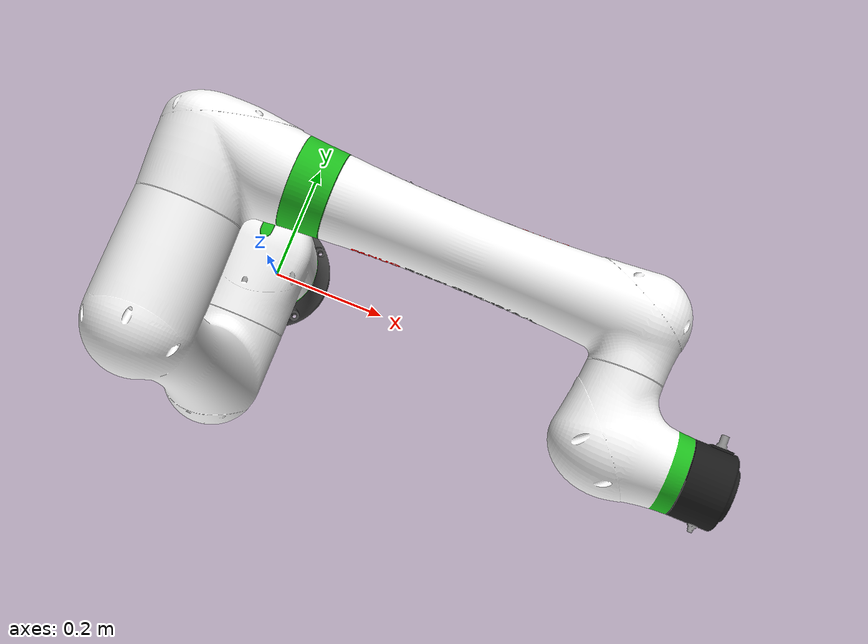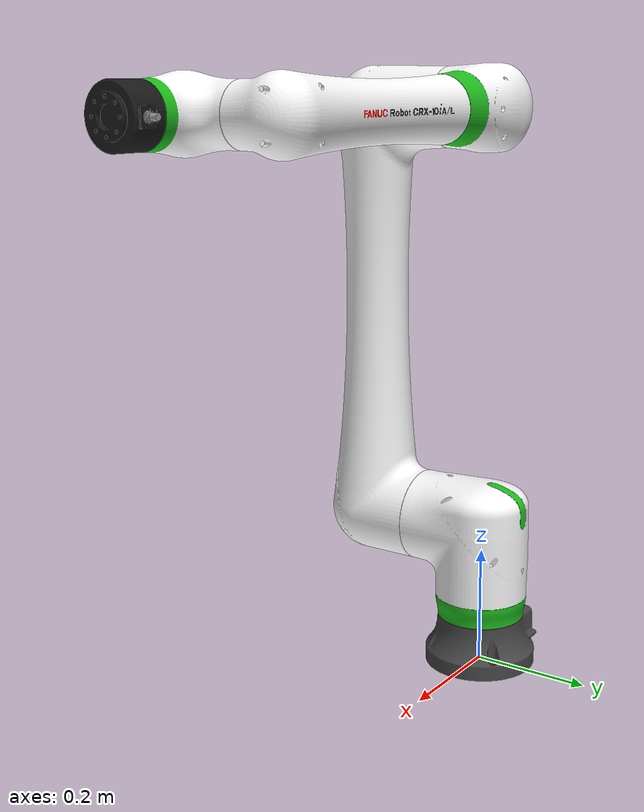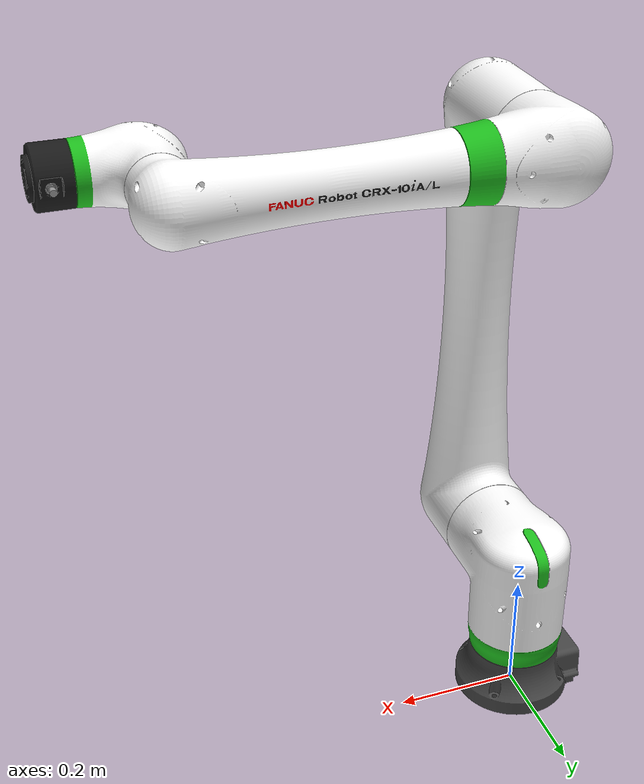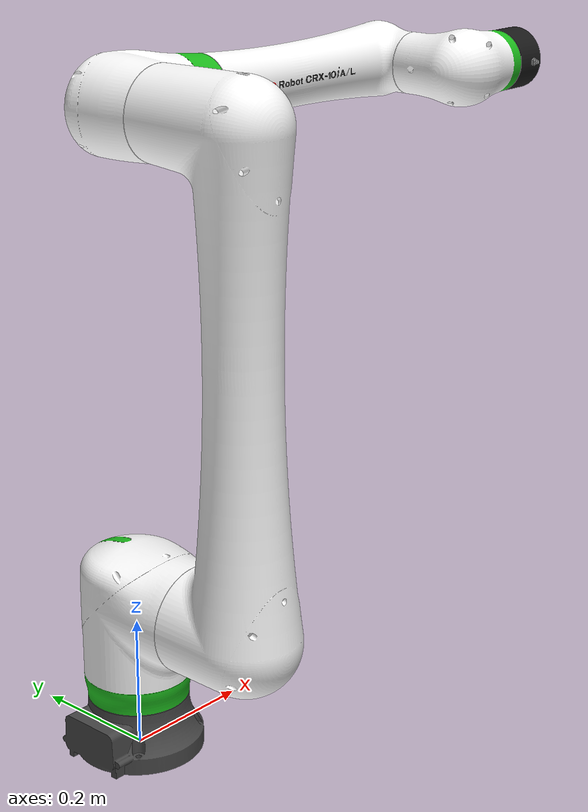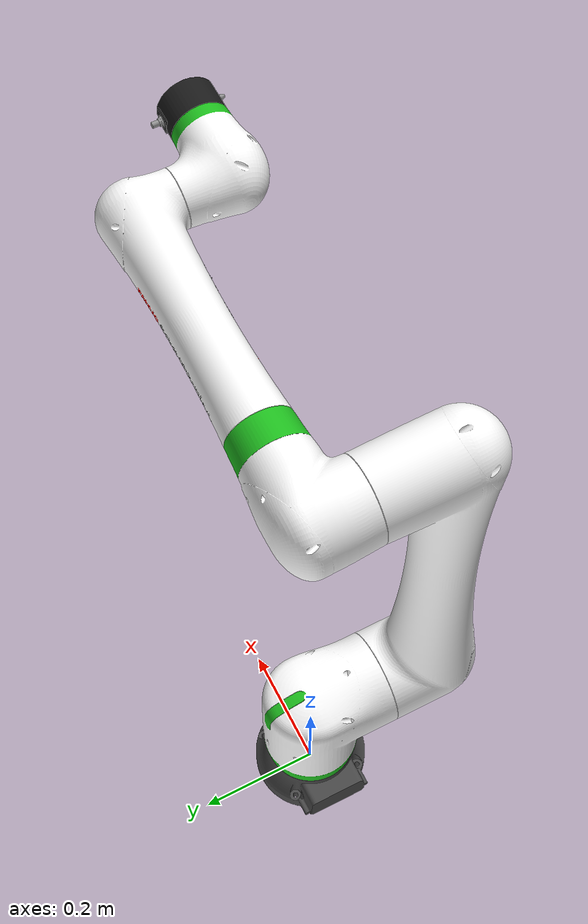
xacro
<?xml version="1.0" ?>
<robot name="crx10ia_l" xmlns:xacro="http://wiki.ros.org/xacro">
  <xacro:include
    filename="$(find fanuc_crx_description)/urdf/crx10ia_l_urdf_macro.xacro"
  />

  <link name="world" />
  <link name="ee_link" />
  <xacro:crx10ia_l parent="world" child="ee_link">
    <origin xyz="0 0 0" rpy="0 0 0" />
  </xacro:crx10ia_l>
</robot>

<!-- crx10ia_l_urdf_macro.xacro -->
<!--
SPDX-FileCopyrightText: 2025-2026, FANUC America Corporation
SPDX-FileCopyrightText: 2025-2026, FANUC CORPORATION
SPDX-License-Identifier: Apache-2.0
-->
<robot xmlns:xacro="http://wiki.ros.org/xacro">
  <xacro:macro
    name="crx10ia_l"
    params="prefix=''
            parent
            *origin
            child"
  >
    <xacro:property name="l_base" value="0.245" />
    <xacro:property name="l_1" value="0.0" />
    <xacro:property name="l_2" value="0.710" />
    <xacro:property name="l_3" value="0.0" />
    <xacro:property name="l_4" value="0.540" />
    <xacro:property name="l_5" value="0.150" />
    <xacro:property name="l_6" value="0.160" />

    <xacro:property name="mz_1" value="0.1277" />
    <xacro:property name="mz_2" value="0.245" />
    <xacro:property name="mz_3" value="0.955" />
    <xacro:property name="mx_1" value="0.540" />
    <xacro:property name="mx_2" value="0.700" />
    <xacro:property name="my_1" value="-0.150" />

    <xacro:property name="j1_lower_limit" value="${radians(-179.9)}" />
    <xacro:property name="j2_lower_limit" value="${radians(-179.9)}" />
    <xacro:property name="j3_lower_limit" value="${radians(-270)}" />
    <xacro:property name="j4_lower_limit" value="${radians(-190)}" />
    <xacro:property name="j5_lower_limit" value="${radians(-179.9)}" />
    <xacro:property name="j6_lower_limit" value="${radians(-225)}" />

    <xacro:property name="j1_upper_limit" value="${radians(179.9)}" />
    <xacro:property name="j2_upper_limit" value="${radians(179.9)}" />
    <xacro:property name="j3_upper_limit" value="${radians(270)}" />
    <xacro:property name="j4_upper_limit" value="${radians(190)}" />
    <xacro:property name="j5_upper_limit" value="${radians(179.9)}" />
    <xacro:property name="j6_upper_limit" value="${radians(225)}" />

    <xacro:property name="j1_effort_limit" value="400" />
    <xacro:property name="j2_effort_limit" value="400" />
    <xacro:property name="j3_effort_limit" value="200" />
    <xacro:property name="j4_effort_limit" value="60" />
    <xacro:property name="j5_effort_limit" value="60" />
    <xacro:property name="j6_effort_limit" value="60" />

    <xacro:property name="j1_velocity_limit" value="${radians(120)}" />
    <xacro:property name="j2_velocity_limit" value="${radians(120)}" />
    <xacro:property name="j3_velocity_limit" value="${radians(180)}" />
    <xacro:property name="j4_velocity_limit" value="${radians(180)}" />
    <xacro:property name="j5_velocity_limit" value="${radians(180)}" />
    <xacro:property name="j6_velocity_limit" value="${radians(180)}" />

    <!-- links -->
    <link name="${prefix}base_link">
      <visual>
        <origin xyz="0 0 0" rpy="0 0 0" />
        <geometry>
          <mesh
            filename="package://fanuc_crx_description/meshes/crx10ia_l/visual/base.dae"
          />
        </geometry>
      </visual>
      <collision>
        <origin xyz="0 0 0" rpy="0 0 0" />
        <geometry>
          <mesh
            filename="package://fanuc_crx_description/meshes/crx10ia_l/collision/base.stl"
            scale="0.001 0.001 0.001"
          />
        </geometry>
      </collision>
      <inertial>
        <mass value="4.517" />
        <origin xyz="-0.01099 0.00068 0.06387" />
        <inertia
          ixx="0.012030117"
          ixy="-0.000225344"
          ixz="0.001122373"
          iyy="0.016142165"
          iyz="-0.000086473"
          izz="0.019880412"
        />
      </inertial>
    </link>

    <link name="${prefix}J1_link">
      <visual>
        <origin xyz="0 0 ${-l_base}" rpy="0 0 0" />
        <geometry>
          <mesh
            filename="package://fanuc_crx_description/meshes/crx10ia_l/visual/j1.dae"
          />
        </geometry>
      </visual>
      <collision>
        <origin xyz="0 0 ${mz_1 - l_base}" rpy="0 0 0" />
        <geometry>
          <mesh
            filename="package://fanuc_crx_description/meshes/crx10ia_l/collision/j1.stl"
            scale="0.001 0.001 0.001"
          />
        </geometry>
      </collision>
      <inertial>
        <mass value="10.673" />
        <origin xyz="-0.00058 -0.04577 -0.03713" />
        <inertia
          ixx="0.107483279"
          ixy="-0.003187604"
          ixz="0.001474912"
          iyy="0.066223333"
          iyz="-0.019080999"
          izz="0.07617368"
        />
      </inertial>
    </link>

    <link name="${prefix}J2_link">
      <visual>
        <origin xyz="-${l_1} 0 ${-l_base}" rpy="0 0 0" />
        <geometry>
          <mesh
            filename="package://fanuc_crx_description/meshes/crx10ia_l/visual/j2.dae"
          />
        </geometry>
      </visual>
      <collision>
        <origin xyz="-${l_1} 0 ${mz_2 - l_base}" rpy="0 0 0" />
        <geometry>
          <mesh
            filename="package://fanuc_crx_description/meshes/crx10ia_l/collision/j2.stl"
            scale="0.001 0.001 0.001"
          />
        </geometry>
      </collision>
      <inertial>
        <mass value="11.472" />
        <origin xyz="-0.00005 -0.18506 0.33295" />
        <inertia
          ixx="1.254548468"
          ixy="-0.000000339"
          ixz="-0.000116455"
          iyy="1.22471305"
          iyz="0.072788114"
          izz="0.062673661"
        />
      </inertial>
    </link>

    <link name="${prefix}J3_link">
      <visual>
        <origin xyz="-${l_1} 0 ${-l_base - l_2}" rpy="0 0 0" />
        <geometry>
          <mesh
            filename="package://fanuc_crx_description/meshes/crx10ia_l/visual/j3.dae"
          />
        </geometry>
      </visual>
      <collision>
        <origin xyz="-${l_1} 0 ${mz_3 - l_base - l_2}" rpy="0 0 0" />
        <geometry>
          <mesh
            filename="package://fanuc_crx_description/meshes/crx10ia_l/collision/j3.stl"
            scale="0.001 0.001 0.001"
          />
        </geometry>
      </collision>
      <inertial>
        <mass value="4.162" />
        <origin xyz="0.0352 -0.01088 0.00006" />
        <inertia
          ixx="0.007588888"
          ixy="0.001725574"
          ixz="-0.000011685"
          iyy="0.019835773"
          iyz="0.000026918"
          izz="0.018316462"
        />
      </inertial>
    </link>

    <link name="${prefix}J4_link">
      <visual>
        <origin xyz="${-l_1} 0 ${-l_base - l_2 - l_3}" rpy="0 0 0" />
        <geometry>
          <mesh
            filename="package://fanuc_crx_description/meshes/crx10ia_l/visual/j4.dae"
          />
        </geometry>
      </visual>
      <collision>
        <origin
          xyz="${mx_1 - l_1} 0 ${mz_3 - l_base - l_2 - l_3}"
          rpy="0 0 0"
        />
        <geometry>
          <mesh
            filename="package://fanuc_crx_description/meshes/crx10ia_l/collision/j4.stl"
            scale="0.001 0.001 0.001"
          />
        </geometry>
      </collision>
      <inertial>
        <mass value="3.969" />
        <origin xyz="0.3726 -0.00262 -0.00013" />
        <inertia
          ixx="0.004604385"
          ixy="-0.003895767"
          ixz="0.000048747"
          iyy="0.080457951"
          iyz="0.000002764"
          izz="0.08116905"
        />
      </inertial>
    </link>

    <link name="${prefix}J5_link">
      <visual>
        <origin xyz="${-l_1 - l_4} 0.0 ${-l_base - l_2 - l_3}" rpy="0 0 0" />
        <geometry>
          <mesh
            filename="package://fanuc_crx_description/meshes/crx10ia_l/visual/j5.dae"
          />
        </geometry>
      </visual>
      <collision>
        <origin
          xyz="${mx_1 -l_1 - l_4} ${my_1} ${mz_3 - l_base - l_2 - l_3}"
          rpy="0 0 0"
        />
        <geometry>
          <mesh
            filename="package://fanuc_crx_description/meshes/crx10ia_l/collision/j5.stl"
            scale="0.001 0.001 0.001"
          />
        </geometry>
      </collision>
      <inertial>
        <mass value="2.509" />
        <origin xyz="0.0225 -0.11714 0.0013" />
        <inertia
          ixx="0.006138756"
          ixy="-0.001800644"
          ixz="-0.000021155"
          iyy="0.004453218"
          iyz="-0.000288577"
          izz="0.00771992"
        />
      </inertial>
    </link>

    <link name="${prefix}J6_link">
      <visual>
        <origin xyz="${-l_1 - l_4} ${l_5} ${-l_base - l_2 - l_3}" rpy="0 0 0" />
        <geometry>
          <mesh
            filename="package://fanuc_crx_description/meshes/crx10ia_l/visual/j6.dae"
          />
        </geometry>
      </visual>
      <collision>
        <origin
          xyz="${mx_2 -l_1 - l_4} ${my_1 + l_5} ${mz_3 - l_base - l_2 - l_3}"
          rpy="0 0 0"
        />
        <geometry>
          <mesh
            filename="package://fanuc_crx_description/meshes/crx10ia_l/collision/j6.stl"
            scale="0.001 0.001 0.001"
          />
        </geometry>
      </collision>
      <inertial>
        <mass value="1.305" />
        <origin xyz="0.11455 0.00041 0.0001" />
        <inertia
          ixx="0.001477627"
          ixy="0.000009863"
          ixz="0.000000933"
          iyy="0.001399425"
          iyz="0.000000404"
          izz="0.001451937"
        />
      </inertial>
    </link>

    <!-- joints -->
    <joint name="${prefix}J1" type="revolute">
      <origin xyz="0 0 ${l_base}" rpy="0 0 0" />
      <parent link="${prefix}base_link" />
      <child link="${prefix}J1_link" />
      <axis xyz="0 0 1" />
      <limit
        lower="${j1_lower_limit}"
        upper="${j1_upper_limit}"
        effort="${j1_effort_limit}"
        velocity="${j1_velocity_limit}"
      />
    </joint>

    <joint name="${prefix}J2" type="revolute">
      <origin xyz="${l_1} 0 0" rpy="0 0 0" />
      <parent link="${prefix}J1_link" />
      <child link="${prefix}J2_link" />
      <axis xyz="0 1 0" />
      <limit
        lower="${j2_lower_limit}"
        upper="${j2_upper_limit}"
        effort="${j2_effort_limit}"
        velocity="${j2_velocity_limit}"
      />
    </joint>

    <joint name="${prefix}J3" type="revolute">
      <origin xyz="0 0 ${l_2}" rpy="0 0 0" />
      <parent link="${prefix}J2_link" />
      <child link="${prefix}J3_link" />
      <axis xyz="0 -1 0" />
      <limit
        lower="${j3_lower_limit}"
        upper="${j3_upper_limit}"
        effort="${j3_effort_limit}"
        velocity="${j3_velocity_limit}"
      />
    </joint>

    <joint name="${prefix}J4" type="revolute">
      <origin xyz="0 0 ${l_3}" rpy="0 0 0" />
      <parent link="${prefix}J3_link" />
      <child link="${prefix}J4_link" />
      <axis xyz="-1 0 0" />
      <limit
        lower="${j4_lower_limit}"
        upper="${j4_upper_limit}"
        effort="${j4_effort_limit}"
        velocity="${j4_velocity_limit}"
      />
    </joint>

    <joint name="${prefix}J5" type="revolute">
      <origin xyz="${l_4} 0 0" rpy="0 0 0" />
      <parent link="${prefix}J4_link" />
      <child link="${prefix}J5_link" />
      <axis xyz="0 -1 0" />
      <limit
        lower="${j5_lower_limit}"
        upper="${j5_upper_limit}"
        effort="${j5_effort_limit}"
        velocity="${j5_velocity_limit}"
      />
    </joint>

    <joint name="${prefix}J6" type="revolute">
      <origin xyz="0 -${l_5} 0" rpy="0 0 0" />
      <parent link="${prefix}J5_link" />
      <child link="${prefix}J6_link" />
      <axis xyz="-1 0 0" />
      <limit
        lower="${j6_lower_limit}"
        upper="${j6_upper_limit}"
        effort="${j6_effort_limit}"
        velocity="${j6_velocity_limit}"
      />
    </joint>

    <!-- world coords -->
    <link name="${prefix}wbase" />
    <joint name="${prefix}base_link-wbase" type="fixed">
      <origin xyz="0 0 ${l_base}" rpy="0 0 0" />
      <parent link="${prefix}base_link" />
      <child link="${prefix}wbase" />
    </joint>

    <!-- flange coords -->
    <link name="${prefix}flange" />
    <joint name="${prefix}J6-flange" type="fixed">
      <origin xyz="${l_6} 0 0" rpy="0 0 0" />
      <parent link="${prefix}J6_link" />
      <child link="${prefix}flange" />
    </joint>

    <!-- FANUC flange coords -->
    <link name="${prefix}fanuc_flange" />
    <joint name="${prefix}flange-fanuc_flange" type="fixed">
      <origin xyz="0 0 0" rpy="${radians( 180)} ${radians(-90)} ${radians( 0)}" />
      <parent link="${prefix}flange" />
      <child link="${prefix}fanuc_flange" />
    </joint>

    <!-- Attach to parent -->
    <joint name="${prefix}base_joint" type="fixed">
      <xacro:insert_block name="origin" />
      <parent link="${parent}" />
      <child link="${prefix}base_link" />
    </joint>

    <!-- Attach child -->
    <joint name="${prefix}child_joint" type="fixed">
      <origin xyz="0 0 0" rpy="0 0 0" />
      <parent link="${prefix}flange" />
      <child link="${child}" />
    </joint>
  </xacro:macro>
</robot>
